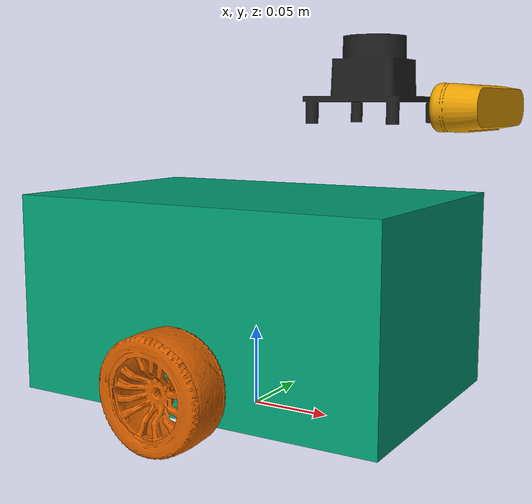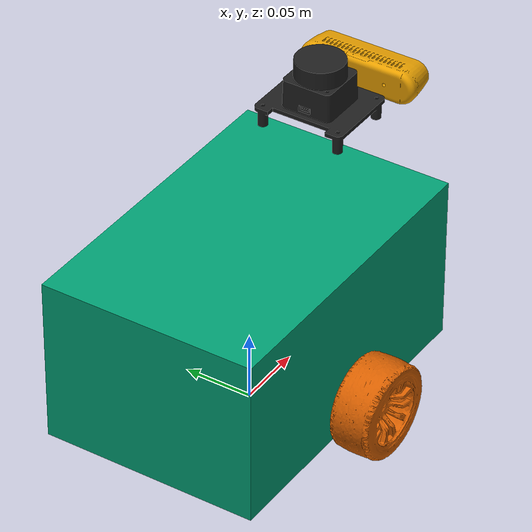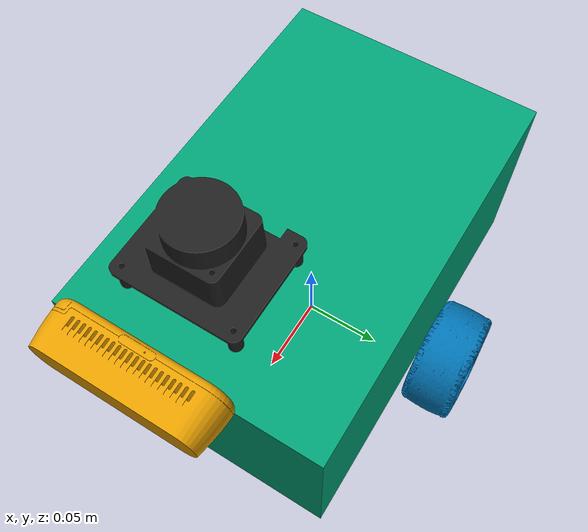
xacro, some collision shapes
<?xml version="1.0"?>

<robot xmlns:xacro="http://www.ros.org/wiki/xacro"  name="burger">
    <xacro:arg name="use_sim_camera" default="false"/>
    <xacro:arg name="sim_mode" default="false"/>
    <xacro:include filename="robot_core.xacro" />
    <xacro:include filename="lidar.xacro" />
    <xacro:include filename="camera.xacro" />
    <xacro:if value="$(arg use_sim_camera)">
    </xacro:if>
</robot>

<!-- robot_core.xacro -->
<robot xmlns:xacro="http://www.ros.org/wiki/xacro">

  <xacro:include filename="inertial_macros.xacro"/>

  <!-- ================= PROPERTIES ================= -->

  <xacro:property name="chassis_length" value="0.24"/>
  <xacro:property name="chassis_width"  value="0.16"/>
  <xacro:property name="chassis_height" value="0.123"/>
  <xacro:property name="chassis_mass"   value="2.5"/>

  <xacro:property name="wheel_radius"     value="0.0346"/>
  <xacro:property name="wheel_thickness"  value="0.026"/>
  <xacro:property name="wheel_mass"       value="0.15"/>
  <xacro:property name="wheel_offset_x"   value="0.0"/>
  <xacro:property name="wheel_offset_y"   value="0.1"/>
  <xacro:property name="wheel_offset_z"   value="0.005"/>

  <xacro:property name="caster_wheel_radius" value="0.01"/>
  <xacro:property name="caster_wheel_mass"   value="0.1"/>
  <xacro:property name="caster_wheel_offset_x" value="0.075"/>
  <xacro:property name="caster_wheel_offset_z"
                  value="${wheel_offset_z - wheel_radius + caster_wheel_radius -0.024}"/>

  <!-- ================= MATERIALS ================= -->

  <material name="white">
    <color rgba="1 1 1 0.95"/>
  </material>

  <material name="orange">
    <color rgba="1 0.3 0.1 1"/>
  </material>

  <material name="blue">
    <color rgba="0.2 0.2 1 1"/>
  </material>

  <material name="black">
    <color rgba="0 0 0 0.99"/>
  </material>
 <material name="light_black">
    <color rgba="0.1 0.1 0.1 1"/>
  </material>

  <material name="red">
    <color rgba="1 0 0 0.9"/>
  </material>

  <material name="green">
    <color rgba="0 0.8 0 1"/>
  </material>

  <material name="grey">
    <color rgba="0.647 0.647 0.647 1"/>
  </material>

  <!-- ================= BASE LINK ================= -->

  <link name="base_link"/>

  <!-- ================= BASE FOOTPRINT ================= -->

  <joint name="base_footprint_joint" type="fixed">
    <parent link="base_link"/>
    <child link="base_footprint"/>
    <origin xyz="0 0 0" rpy="0 0 0"/>
  </joint>

  <link name="base_footprint"/>

  <!-- ================= CHASSIS ================= -->

  <joint name="chassis_joint" type="fixed">
    <parent link="base_link"/>
    <child link="chassis"/>
    <!-- Keep the body over the axle; lower it relative to the wheel centers. -->
    <origin xyz="0 0 0.0046" rpy="0 0 0"/>
  </joint>

  <link name="chassis">

    <visual>
      <origin xyz="0 0.0 0" rpy="0 0 0"/>
      <geometry>
        <mesh filename="package://robot_descriptor/meshes/chassis_diff_wheel_robot.obj"
              scale="0.01 0.01 0.01"/>
      </geometry>
    </visual>

    <collision>
      <origin xyz="0 0 ${2*wheel_radius}"/>
      <geometry>
        <box size="${chassis_length} ${chassis_width} ${chassis_height}"/>
      </geometry>
    </collision>

    <xacro:inertial_box mass="2.5"
                        x="${chassis_length}"
                        y="${chassis_width}"
                        z="${chassis_height}">
        <origin xyz="${chassis_length/10} 0 ${chassis_height/2}" rpy="0 0 0"/>
    </xacro:inertial_box>

  </link>

  <!-- ================= IMU ================= -->

  <joint name="IMU" type="fixed">
    <parent link="chassis"/>
    <child link="imu"/>
    <origin xyz="-0.025 0 0.09" rpy="0 0 0"/>
  </joint>

    <link name="imu">

    <inertial>
        <mass value="0.01"/>
        <inertia ixx="1e-6" ixy="0" ixz="0"
                iyy="1e-6" iyz="0"
                izz="1e-6"/>
    </inertial>

    </link>

 <gazebo reference="imu">
  <sensor name="bno055" type="imu">
    <always_on>1</always_on>
    <preserveFixedJoint>true</preserveFixedJoint>
    <update_rate>100</update_rate>
    <visualize>true</visualize>
    <topic>imu</topic>
    <gz_frame_id>imu</gz_frame_id>
    <plugin filename="gz-sim-imu-system" name="gz::sim::systems::Imu">
    </plugin>
    <imu>
      <angular_velocity>
        <x><noise type="gaussian"><mean>0.0</mean><stddev>2e-4</stddev></noise></x>
        <y><noise type="gaussian"><mean>0.0</mean><stddev>2e-4</stddev></noise></y>
        <z><noise type="gaussian"><mean>0.0</mean><stddev>2e-4</stddev></noise></z>
      </angular_velocity>
      <linear_acceleration>
        <x><noise type="gaussian"><mean>0.0</mean><stddev>1.7e-2</stddev></noise></x>
        <y><noise type="gaussian"><mean>0.0</mean><stddev>1.7e-2</stddev></noise></y>
        <z><noise type="gaussian"><mean>0.0</mean><stddev>1.7e-2</stddev></noise></z>
      </linear_acceleration>
    </imu>
  </sensor>
</gazebo>
  <!-- ================= LEFT WHEEL ================= -->

  <joint name="left_wheel_joint" type="continuous">
    <parent link="base_link"/>
    <child link="left_wheel"/>
    <origin xyz="0 ${wheel_offset_y} ${wheel_radius}" rpy="-${pi/2} 0 0"/>
    <axis xyz="0 0 1"/>
  </joint>

  <link name="left_wheel">

    <visual>
      <!-- Mesh exported in assembly coordinates; center it on the wheel joint. -->
      <origin xyz="0.0018 0.0343 -0.1060" rpy="1.5708 0 0"/>
      <geometry>
        <mesh filename="package://robot_descriptor/meshes/wheel_left.obj"
              scale="0.01 0.01 0.01"/>
      </geometry>
    </visual>

    <collision>
      <geometry>
        <cylinder radius="${wheel_radius}"
                  length="${wheel_thickness}"/>
      </geometry>
    </collision>

    <xacro:inertial_cylinder mass="${wheel_mass}"
                             length="${wheel_thickness}"
                             radius="${wheel_radius}">
      <origin xyz="0 0 0" rpy="0 0 0"/>
    </xacro:inertial_cylinder>

  </link>

  <!-- ================= RIGHT WHEEL ================= -->

  <joint name="right_wheel_joint" type="continuous">
    <parent link="base_link"/>
    <child link="right_wheel"/>
    <origin xyz="0 -${wheel_offset_y} ${wheel_radius}" rpy="${pi/2} 0 0"/>
    <axis xyz="0 0 -1"/>
  </joint>

  <link name="right_wheel">

    <visual>
      <origin xyz="0.0018 0.0343 -0.1060" rpy="1.5708 0 0"/>
      <geometry>
        <mesh filename="package://robot_descriptor/meshes/wheel_left.obj"
              scale="0.01 0.01 0.01"/>
      </geometry>
    </visual>

    <collision>
      <geometry>
        <cylinder radius="${wheel_radius}"
                  length="${wheel_thickness}"/>
      </geometry>
    </collision>

    <xacro:inertial_cylinder mass="${wheel_mass}"
                             length="${wheel_thickness}"
                             radius="${wheel_radius}">
      <origin xyz="0 0 0" rpy="0 0 0"/>
    </xacro:inertial_cylinder>

  </link>

  <!-- ================= CASTER ================= -->

  <joint name="caster_wheel_joint" type="fixed">
    <parent link="chassis"/>
    <child link="caster_wheel"/>
    <origin xyz="${caster_wheel_offset_x} 0 ${caster_wheel_offset_z}"/>
  </joint>

  <link name="caster_wheel">

    <collision>
      <geometry>
        <sphere radius="${caster_wheel_radius}"/>
      </geometry>
    </collision>

    <xacro:inertial_sphere mass="${caster_wheel_mass}"
                           radius="${caster_wheel_radius}">
      <origin xyz="0 0 0" rpy="0 0 0"/>
    </xacro:inertial_sphere>

  </link>

  <gazebo reference="caster_wheel">
    <material>Gazebo/White</material>
    <mu1 value="0.001"/>
    <mu2 value="0.001"/>
  </gazebo>
    <gazebo>
    <plugin filename="gz-sim-pose-publisher-system" name="gz::sim::systems::PosePublisher">
        <publish_link_pose>true</publish_link_pose>
        <use_pose_vector_msg>true</use_pose_vector_msg>
        <static_publisher>true</static_publisher>
        <static_update_frequency>10</static_update_frequency>
    </plugin>
    </gazebo>

  <gazebo>
    <plugin
        filename="gz-sim-diff-drive-system"
        name="gz::sim::systems::DiffDrive">

      <left_joint>left_wheel_joint</left_joint>
      <right_joint>right_wheel_joint</right_joint>

      <wheel_separation>0.20</wheel_separation>
      <wheel_radius>0.0346</wheel_radius>

      <topic>cmd_vel</topic>

      <odom_topic>odom</odom_topic>
      <tf_topic>tf</tf_topic>

      <frame_id>odom</frame_id>
      <child_frame_id>base_link</child_frame_id>

      <publish_odom>true</publish_odom>
      <publish_tf>true</publish_tf>

    </plugin>
  </gazebo>
</robot>

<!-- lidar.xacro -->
<robot xmlns:xacro="http://www.ros.org/wiki/xacro" >

    <joint name="laser_joint" type="fixed">
        <parent link="chassis"/>
        <child link="laser_link"/>
        <!-- Sensor origin at the center of the assembly-coordinate OBJ mesh. -->
        <origin xyz="0.0800 -0.0030 0.1993" rpy="0 0 0"/>
    </joint>

    <link name="laser_link">
        <visual>
            <origin xyz="-0.0800 0.0030 -0.1993" rpy="0 0 0"/>
            <geometry>
                <mesh filename="package://robot_descriptor/meshes/lidar_LD06.obj" scale="0.01 0.01 0.01"/>
            </geometry>
        </visual>

        <xacro:inertial_cylinder mass="0.1" length="0.04" radius="0.05">
            <origin xyz="0 0 0" rpy="0 0 0"/>
        </xacro:inertial_cylinder>
    </link>

    <gazebo reference="laser_link">
    <material>Gazebo/Black</material>
    <self_collide>false</self_collide>

    <sensor name="ld06" type="gpu_lidar">
        <pose>0 0 0 0 0 0</pose>
        <always_on>true</always_on>
        <update_rate>10</update_rate>
        <visualize>false</visualize>
        <topic>scan</topic>
        <gz_frame_id>laser_link</gz_frame_id>
        <lidar>

        <scan>
            <horizontal>
            <samples>720</samples>
            <resolution>1</resolution>
            <min_angle>-3.141592</min_angle>
            <max_angle>3.141592</max_angle>
            </horizontal>
        </scan>

        <range>
            <min>0.1</min>
            <max>12.0</max>
            <resolution>0.01</resolution>
        </range>

        <noise>
            <type>gaussian</type>
            <mean>0.0</mean>
            <stddev>0.02</stddev>
        </noise>

        </lidar>

    </sensor>
    </gazebo>

</robot>

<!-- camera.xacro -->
<robot xmlns:xacro="http://www.ros.org/wiki/xacro">

    <!-- DEPTH CAMERA -->

    <joint name="realsense_joint" type="fixed">
        <parent link="chassis"/>
        <child link="realsense_link"/>
        <!-- Sensor origin at the center of the assembly-coordinate OBJ mesh. -->
        <origin xyz="0.1404 -0.0006 0.1839" rpy="0 0 0"/>
    </joint>

    <link name="realsense_link">
        <visual>
            <origin xyz="-0.1404 0.0006 -0.1839" rpy="0 0 0"/>

            <geometry>
                <mesh filename="package://robot_descriptor/meshes/realsense.obj"
                      scale="0.01 0.01 0.01"/>
           </geometry>
        </visual>
    </link>

    <joint name="camera_joint" type="fixed">
        <parent link="realsense_link"/>
        <child link="camera_link"/>
        <origin xyz="0.0 0.0 0.0" rpy="0 0 0"/>
    </joint>

    <link name="camera_link">

    </link>

</robot>
